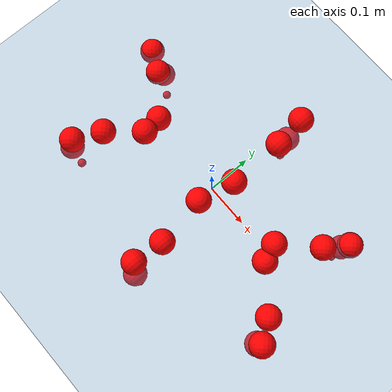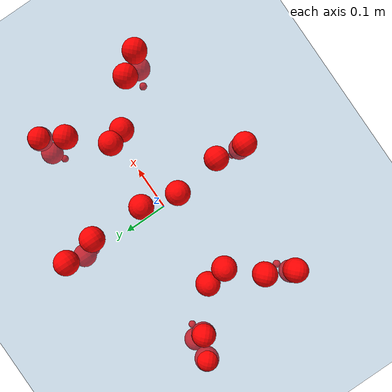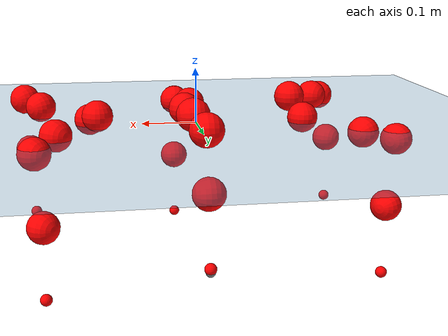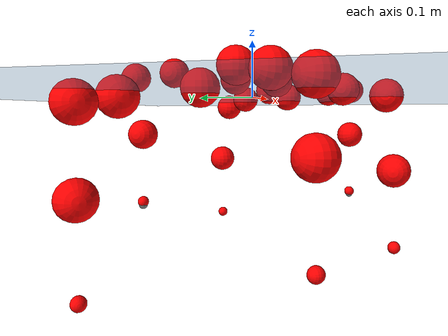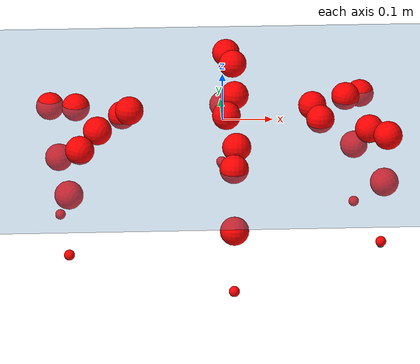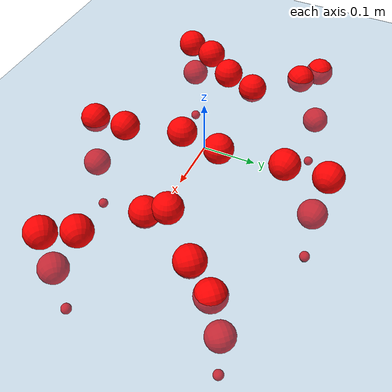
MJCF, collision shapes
<mujoco model="Golem">
  <compiler angle="radian" assetdir="assets" balanceinertia="true" inertiafromgeom="false"/>

  <option timestep="0.005" density="1.2" viscosity="2e-05"/>

  <size nkey="1"/>

  <visual>
    <quality shadowsize="8192"/>
    <map shadowclip="0.5"/>
  </visual>

  <default>
    <default class="/">
      <joint armature="0.01" damping="0.01" frictionloss="0.01"/>
      <geom contype="0" conaffinity="0" group="1" solref="-1000 -80"/>
      <site size="0.01 0.005 0.005" group="5"/>
      <general forcelimited="true" biastype="affine" gainprm="25" biasprm="0 -25 -0.5"/>
      <default class="visual">
        <geom type="mesh" group="2"/>
      </default>
      <default class="collision">
        <geom group="3"/>
      </default>
      <default class="foot">
        <geom size="0.01 0 0" condim="6" group="4" priority="1" solimp="0.015 1 0.01"/>
      </default>
      <default class="reward_collision_sphere">
        <geom group="5" rgba="1 0 0 1"/>
      </default>
    </default>
  </default>

  <asset>
    <texture type="skybox" colorspace="auto" name="//unnamed_texture_0" builtin="gradient" rgb1="0.95 0.95 0.95" rgb2="0.95 0.95 0.95" width="100" height="600"/>
    <texture type="2d" colorspace="auto" name="texplane" builtin="checker" rgb1="0.345 0.575 0.748" rgb2="0.345 0.575 0.748" markrgb="1 1 1" width="512" height="512"/>
    <material name="MatPlane" class="/" texture="texplane" texuniform="true" texrepeat="2 2" specular="0.9"/>
    <mesh name="body" class="/" file="body.stl" scale="0.001 0.001 0.001"/>
    <mesh name="coxa" class="/" file="coxa.stl" scale="0.001 0.001 0.001"/>
    <mesh name="femur" class="/" file="femur.stl" scale="0.001 0.001 0.001"/>
    <mesh name="tibia" class="/" file="tibia.stl" scale="0.001 0.001 0.001"/>
    <mesh name="tarsus" class="/" file="tarsus.stl" scale="0.001 0.001 0.001"/>
  </asset>

  <worldbody>
    <geom name="floor" class="/" size="100 100 0.125" type="plane" group="0" material="MatPlane"/>
    <light name="toplight_shadow" class="/" pos="0 0 5" dir="0.0990148 0.0990148 -0.990148" type="directional" ambient="0.04 0.04 0.04" diffuse="0.55 0.55 0.55" specular="0.12 0.12 0.12"/>
    <light name="toplight_fill" class="/" pos="0 0 5" dir="0.0990148 0.0990148 -0.990148" type="directional" castshadow="false" ambient="0.04 0.04 0.04" diffuse="0.3 0.3 0.3" specular="0.08 0.08 0.08"/>
    <body name="trunk" pos="0.00694934 -0.0072793 0.00843519" quat="0.999991 -0.00129095 0.00339818 -0.00216249">
      <inertial pos="-0.0150178 -0.00846677 0.00344492" quat="0.998141 -0.0123325 0.0201001 0.0561931" mass="1.07635" diaginertia="0.0159141 0.000700008 8.26307e-06"/>
      <joint name="//unnamed_joint_0" type="free"/>
      <geom name="//unnamed_geom_1" class="/" pos="0 0 0.0169957" quat="1 0 0 0" type="mesh" rgba="0.9 0.9 0.9 1" mesh="body"/>
      <site name="imu" class="/" pos="0.131052 -0.0340208 0.115291" size="0.00705452"/>
      <camera name="track" class="/" pos="0 -1.26332 0" quat="0.707107 0.707107 0 0" mode="trackcom"/>
      <camera name="ego_camera" class="/" pos="0.158488 0 0.0265558" quat="-0.5 -0.5 0.5 0.5"/>
      <body name="coxa_RR" pos="-0.218349 -0.0518131 0.0285823" quat="0.381902 -0.00010517 0.00108637 -0.924202">
        <inertial pos="0.00216362 0.0123884 0.00241904" quat="0.999879 -0.00632661 -0.000193832 -0.0141892" mass="0.0873232" diaginertia="0.0303768 0.0013354 1.32181e-05"/>
        <joint name="coxa_joint_RR" class="/" pos="0 0 0" axis="0.0327996 0.0926091 -0.995162" range="-2.86706 3.12922" armature="0.0036114" damping="0.0633508" frictionloss="0.00654332"/>
        <geom name="//unnamed_geom_2" class="/" type="mesh" rgba="0.2 0.2 0.2 1" mesh="coxa"/>
        <geom name="//unnamed_geom_3" class="reward_collision_sphere" size="0.0282181" pos="-0.0365742 0 0"/>
        <body name="femur_RR" pos="0.0555537 0.00315034 -0.0121106" quat="0.496745 -0.505178 0.49776 0.500273">
          <inertial pos="-0.00846315 -0.00348415 0.0127248" quat="0.999791 0.0165289 0.00888219 -0.00812142" mass="0.0926875" diaginertia="0.0252125 0.0011552 1.35306e-05"/>
          <joint name="femur_joint_RR" class="/" pos="0 0 0" axis="-0.076399 0.0364475 -0.996411" stiffness="0.0247234" range="-3.15924 2.94662" armature="0.00723676" damping="0.00880537" frictionloss="0.00314536"/>
          <geom name="//unnamed_geom_4" class="/" type="mesh" rgba="0.9 0.9 0.9 1" mesh="femur"/>
          <geom name="//unnamed_geom_5" class="reward_collision_sphere" size="0.0282181"/>
          <body name="tibia_RR" pos="0.0123255 -0.0686527 0.0195478" quat="-0.000519031 1 0.000327167 -0.000193099">
            <inertial pos="0.00506026 0.0183631 -0.00522382" quat="0.995726 -0.00341944 -0.0076882 0.0919687" mass="0.0698514" diaginertia="0.0225631 0.00110173 1.25107e-05"/>
            <joint name="tibia_joint_RR" class="/" pos="0 0 0" axis="0.0272226 -0.0639926 0.997579" range="-3.41509 3.3093" armature="0.00771751" damping="0" frictionloss="0.0106725"/>
            <geom name="//unnamed_geom_6" class="/" type="mesh" rgba="0.2 0.2 0.2 1" mesh="tibia"/>
            <geom name="//unnamed_geom_7" class="reward_collision_sphere" size="0.0282181"/>
            <body name="tarsus_RR" pos="0.094285 0.0185208 0.0120367" quat="0.99998 -0.000338357 0.00503205 0.00371649">
              <inertial pos="0.075649 0.00375697 0.0139316" quat="0.489847 0.43477 0.55191 0.51616" mass="0.0639915" diaginertia="0.032604 0.000952543 1.79766e-05"/>
              <joint name="tarsus_joint_RR" class="/" pos="0 0 0" axis="4.07837e-06 0.0179911 0.999838" stiffness="0.0416999" range="-2.86471 3.28224" armature="0.0108064" damping="0" frictionloss="0.00164486"/>
              <geom name="//unnamed_geom_8" class="/" type="mesh" rgba="0.9 0.9 0.9 1" mesh="tarsus"/>
              <geom name="foot_1" class="foot" size="0.00387256" pos="0.136544 0 0" quat="0 -0.707107 0 0.707107"/>
              <geom name="//unnamed_geom_10" class="reward_collision_sphere" size="0.0282181"/>
              <geom name="//unnamed_geom_11" class="reward_collision_sphere" size="0.0105818" pos="0.131057 0 0"/>
              <site name="foot_1" class="foot" pos="0.136544 0 0" quat="0 -0.707107 0 0.707107" size="0.00705452"/>
            </body>
          </body>
        </body>
      </body>
      <body name="coxa_RM" pos="-0.00074958 -0.0716903 0.0211096" quat="0.704807 -0.00892185 -0.00299085 -0.709337">
        <inertial pos="-0.0141811 -0.00373959 0.0163984" quat="1 2.51419e-06 4.37496e-06 2.02007e-06" mass="0.0796924" diaginertia="0.0256632 0.000824827 1.43659e-05"/>
        <joint name="coxa_joint_RM" class="/" pos="0 0 0" axis="0.0206596 -0.0333527 -0.99923" range="-3.24494 3.20058" armature="0.00112591" damping="0.0287904" frictionloss="0.00348707"/>
        <geom name="//unnamed_geom_12" class="/" type="mesh" rgba="0.2 0.2 0.2 1" mesh="coxa"/>
        <geom name="//unnamed_geom_13" class="reward_collision_sphere" size="0.0282181" pos="-0.0365742 0 0"/>
        <body name="femur_RM" pos="0.0780487 0.0165476 -0.0173892" quat="0.501045 -0.497458 0.501112 0.500376">
          <inertial pos="-0.0182773 0.0129083 -0.00338464" quat="0.998809 -0.00953369 0.0197947 0.0435744" mass="0.0865735" diaginertia="0.0397938 0.00118782 1.97344e-05"/>
          <joint name="femur_joint_RM" class="/" pos="0 0 0" axis="0.0385442 -0.0615555 -0.997359" range="-3.08927 3.48925" armature="0.00371203" damping="0" frictionloss="0.0113746"/>
          <geom name="//unnamed_geom_14" class="/" type="mesh" rgba="0.9 0.9 0.9 1" mesh="femur"/>
          <geom name="//unnamed_geom_15" class="reward_collision_sphere" size="0.0282181"/>
          <body name="tibia_RM" pos="0.0133995 -0.0729339 -0.00697818" quat="0.00159289 0.999978 -0.0014164 0.00622468">
            <inertial pos="0.0131922 -0.0196018 -0.00539815" quat="0.997917 -0.0460228 -0.0144498 -0.0428325" mass="0.0735901" diaginertia="0.0311834 0.00112085 1.62116e-05"/>
            <joint name="tibia_joint_RM" class="/" pos="0 0 0" axis="0.0348018 -0.0138921 0.999298" stiffness="0.04978" range="-3.22986 2.87183" armature="0.010256" damping="0" frictionloss="0.00635872"/>
            <geom name="//unnamed_geom_16" class="/" type="mesh" rgba="0.2 0.2 0.2 1" mesh="tibia"/>
            <geom name="//unnamed_geom_17" class="reward_collision_sphere" size="0.0282181"/>
            <body name="tarsus_RM" pos="0.126728 0.0112476 -0.000578594" quat="0.999998 0.00216122 -9.83692e-05 0.000114812">
              <inertial pos="0.0566897 0.00610458 -0.00904604" quat="0.502586 0.514948 0.483621 0.498345" mass="0.052384" diaginertia="0.0252451 0.000925156 9.72486e-06"/>
              <joint name="tarsus_joint_RM" class="/" pos="0 0 0" axis="0.0326854 0.0282015 0.999068" stiffness="0.0337456" range="-2.83845 3.45578" armature="0.0074497" damping="0" frictionloss="0.0123669"/>
              <geom name="//unnamed_geom_18" class="/" type="mesh" rgba="0.9 0.9 0.9 1" mesh="tarsus"/>
              <geom name="foot_2" class="foot" size="0.00349235" pos="0.136544 0 0" quat="0 -0.707107 0 0.707107"/>
              <geom name="//unnamed_geom_20" class="reward_collision_sphere" size="0.0282181"/>
              <geom name="//unnamed_geom_21" class="reward_collision_sphere" size="0.0105818" pos="0.131057 0 0"/>
              <site name="foot_2" class="foot" pos="0.136544 0 0" quat="0 -0.707107 0 0.707107" size="0.00705452"/>
            </body>
          </body>
        </body>
      </body>
      <body name="coxa_RF" pos="0.213668 -0.0370107 0.000468283" quat="0.92552 -0.00185687 0.0018762 -0.378689">
        <inertial pos="0.00810608 0.0177521 -0.0149273" quat="0.996181 0.0193667 0.0504105 0.0686052" mass="0.0988805" diaginertia="0.0358353 0.00118374 1.57949e-05"/>
        <joint name="coxa_joint_RF" class="/" pos="0 0 0" axis="-0.0283085 0.074969 -0.996784" range="-3.50139 2.89858" armature="0.0124092" damping="0.0647881" frictionloss="0.0084873"/>
        <geom name="//unnamed_geom_22" class="/" type="mesh" rgba="0.2 0.2 0.2 1" mesh="coxa"/>
        <geom name="//unnamed_geom_23" class="reward_collision_sphere" size="0.0282181" pos="-0.0365742 0 0"/>
        <body name="femur_RF" pos="0.0801806 0.0115662 0.0119679" quat="0.500981 -0.499628 0.500004 0.499386">
          <inertial pos="0.0145911 -0.0176214 -0.00476918" quat="0.99898 -0.0186892 0.0152202 0.0381911" mass="0.0655252" diaginertia="0.023602 0.000738161 1.13141e-05"/>
          <joint name="femur_joint_RF" class="/" pos="0 0 0" axis="0.0304749 0.00853 -0.999499" range="-3.03097 3.37108" armature="0.00576443" damping="0.036118" frictionloss="0.011149"/>
          <geom name="//unnamed_geom_24" class="/" type="mesh" rgba="0.9 0.9 0.9 1" mesh="femur"/>
          <geom name="//unnamed_geom_25" class="reward_collision_sphere" size="0.0282181"/>
          <body name="tibia_RF" pos="-0.00710853 -0.0563409 -0.0109869" quat="0.000187183 0.999998 0.00174492 -0.000211288">
            <inertial pos="-0.00280904 -0.000446018 0.0190585" quat="0.996603 -0.0536747 -0.0566825 0.0262325" mass="0.0727122" diaginertia="0.033194 0.00136322 1.18885e-05"/>
            <joint name="tibia_joint_RF" class="/" pos="0 0 0" axis="0.0349247 -0.0387789 0.998637" stiffness="0.0327367" range="-3.05465 2.89327" armature="0.00530057" damping="0" frictionloss="0.00264326"/>
            <geom name="//unnamed_geom_26" class="/" type="mesh" rgba="0.2 0.2 0.2 1" mesh="tibia"/>
            <geom name="//unnamed_geom_27" class="reward_collision_sphere" size="0.0282181"/>
            <body name="tarsus_RF" pos="0.10146 -0.00330208 0.0016564" quat="0.999972 0.000411192 -0.00538585 -0.0051349">
              <inertial pos="0.0845722 -0.00764571 -0.00920653" quat="0.495458 0.484888 0.507787 0.511427" mass="0.0609323" diaginertia="0.025148 0.00102255 1.36537e-05"/>
              <joint name="tarsus_joint_RF" class="/" pos="0 0 0" axis="0.0258085 0.0589085 0.99793" stiffness="0.0499911" range="-3.44589 3.14478" armature="0.00517826" damping="0.0436189" frictionloss="0.00447059"/>
              <geom name="//unnamed_geom_28" class="/" type="mesh" rgba="0.9 0.9 0.9 1" mesh="tarsus"/>
              <geom name="foot_3" class="foot" size="0.00765594" pos="0.136544 0 0" quat="0 -0.707107 0 0.707107"/>
              <geom name="//unnamed_geom_30" class="reward_collision_sphere" size="0.0282181"/>
              <geom name="//unnamed_geom_31" class="reward_collision_sphere" size="0.0105818" pos="0.131057 0 0"/>
              <site name="foot_3" class="foot" pos="0.136544 0 0" quat="0 -0.707107 0 0.707107" size="0.00705452"/>
            </body>
          </body>
        </body>
      </body>
      <body name="coxa_LR" pos="-0.232258 0.0483898 -0.00299229" quat="0.383106 -0.00449222 -0.000243505 0.923694">
        <inertial pos="0.0145248 0.0152523 0.00042826" quat="0.997211 0.0674257 0.031829 0.00332814" mass="0.0755763" diaginertia="0.0241008 0.00140421 1.93594e-05"/>
        <joint name="coxa_joint_LR" class="/" pos="0 0 0" axis="0.0145512 -0.00878157 -0.999856" range="-2.88759 2.91365" armature="0.00309879" damping="0.00371771" frictionloss="0.00530557"/>
        <geom name="//unnamed_geom_32" class="/" type="mesh" rgba="0.2 0.2 0.2 1" mesh="coxa"/>
        <geom name="//unnamed_geom_33" class="reward_collision_sphere" size="0.0282181" pos="-0.0365742 0 0"/>
        <body name="femur_LR" pos="0.0816191 0.014075 -0.0144427" quat="0.503222 -0.497099 0.500324 0.499336">
          <inertial pos="-0.00622817 0.0197967 -0.00736226" quat="0.999985 -0.00343452 -0.00299256 0.00315265" mass="0.0750502" diaginertia="0.0337745 0.000846159 1.66661e-05"/>
          <joint name="femur_joint_LR" class="/" pos="0 0 0" axis="-0.00467398 0.00027895 0.999989" stiffness="0.0378603" range="-3.47989 3.18084" armature="0.00895341" damping="0.102478" frictionloss="0.006964"/>
          <geom name="//unnamed_geom_34" class="/" type="mesh" rgba="0.9 0.9 0.9 1" mesh="femur"/>
          <geom name="//unnamed_geom_35" class="reward_collision_sphere" size="0.0282181"/>
          <body name="tibia_LR" pos="0.00815143 -0.0553624 0.0192731" quat="0.00073361 0.999981 -0.00490145 -0.0037046">
            <inertial pos="-0.0126915 0.0152039 0.0124934" quat="0.996597 0.0805785 0.015784 0.00726653" mass="0.058063" diaginertia="0.0289597 0.00105072 1.17652e-05"/>
            <joint name="tibia_joint_LR" class="/" pos="0 0 0" axis="0.0486053 -0.00376233 -0.998811" range="-3.38655 2.79394" armature="0.00395681" damping="0.0689151" frictionloss="0.00665661"/>
            <geom name="//unnamed_geom_36" class="/" type="mesh" rgba="0.2 0.2 0.2 1" mesh="tibia"/>
            <geom name="//unnamed_geom_37" class="reward_collision_sphere" size="0.0282181"/>
            <body name="tarsus_LR" pos="0.120719 -0.00303574 0.0191875" quat="0.999974 0.00657735 0.000181154 -0.00306558">
              <inertial pos="0.0802601 0.0183365 0.0170286" quat="0.543686 0.488862 0.473105 0.491519" mass="0.0638431" diaginertia="0.0224262 0.00111261 1.53848e-05"/>
              <joint name="tarsus_joint_LR" class="/" pos="0 0 0" axis="-0.00266897 -0.0853226 -0.99635" stiffness="0.0830237" range="-2.92139 3.39698" armature="0.0124942" damping="0.0787919" frictionloss="0.0116075"/>
              <geom name="//unnamed_geom_38" class="/" type="mesh" rgba="0.9 0.9 0.9 1" mesh="tarsus"/>
              <geom name="foot_4" class="foot" size="0.00189216" pos="0.136544 0 0" quat="0.707107 0 -0.707107 0"/>
              <geom name="//unnamed_geom_40" class="reward_collision_sphere" size="0.0282181"/>
              <geom name="//unnamed_geom_41" class="reward_collision_sphere" size="0.0105818" pos="0.131057 0 0"/>
              <site name="foot_4" class="foot" pos="0.136544 0 0" quat="0.707107 0 -0.707107 0" size="0.00705452"/>
            </body>
          </body>
        </body>
      </body>
      <body name="coxa_LM" pos="0.0189594 0.0843788 0.0271335" quat="0.707501 0.000429341 0.00107839 0.706711">
        <inertial pos="0.00992994 0.0144281 -0.0101141" quat="0.996552 0.0502415 0.00762364 -0.0655864" mass="0.0641259" diaginertia="0.0181737 0.000783376 9.80315e-06"/>
        <joint name="coxa_joint_LM" class="/" pos="0 0 0" axis="-0.0938181 -0.0215994 -0.995355" stiffness="0.0503079" range="-3.22133 2.97526" armature="0.00413914" damping="0" frictionloss="0.00243796"/>
        <geom name="//unnamed_geom_42" class="/" type="mesh" rgba="0.2 0.2 0.2 1" mesh="coxa"/>
        <geom name="//unnamed_geom_43" class="reward_collision_sphere" size="0.0282181" pos="-0.0365742 0 0"/>
        <body name="femur_LM" pos="0.0883974 -0.000954117 0.0145515" quat="0.500231 -0.499921 0.499812 0.500035">
          <inertial pos="-0.0143501 0.00680247 0.00858474" quat="0.997225 -0.0724237 -0.00147925 -0.0171899" mass="0.0492454" diaginertia="0.0265861 0.000629041 1.19699e-05"/>
          <joint name="femur_joint_LM" class="/" pos="0 0 0" axis="-0.0159828 0.000579608 0.999872" range="-3.3183 3.02878" armature="0.00866997" damping="0" frictionloss="0.0120152"/>
          <geom name="//unnamed_geom_44" class="/" type="mesh" rgba="0.9 0.9 0.9 1" mesh="femur"/>
          <geom name="//unnamed_geom_45" class="reward_collision_sphere" size="0.0282181"/>
          <body name="tibia_LM" pos="0.00806274 -0.0764495 0.0107061" quat="-0.00594818 0.999968 0.00152628 0.00509042">
            <inertial pos="-0.0133179 -0.00417771 0.0164102" quat="0.996365 0.0695585 0.00287263 0.0490885" mass="0.0808993" diaginertia="0.030901 0.000833997 1.59045e-05"/>
            <joint name="tibia_joint_LM" class="/" pos="0 0 0" axis="0.0608064 -0.0106886 -0.998092" stiffness="0.0876053" range="-3.07847 3.16226" armature="0.00818033" damping="0" frictionloss="0.0125495"/>
            <geom name="//unnamed_geom_46" class="/" type="mesh" rgba="0.2 0.2 0.2 1" mesh="tibia"/>
            <geom name="//unnamed_geom_47" class="reward_collision_sphere" size="0.0282181"/>
            <body name="tarsus_LM" pos="0.109795 -0.0162462 -0.00434478" quat="0.999966 -0.0078757 0.00179713 0.00181562">
              <inertial pos="0.0760006 0.00313344 -0.0122348" quat="0.510351 0.425535 0.536071 0.520662" mass="0.0597037" diaginertia="0.0219166 0.00121881 1.42691e-05"/>
              <joint name="tarsus_joint_LM" class="/" pos="0 0 0" axis="-0.0318641 -0.0894578 -0.995481" range="-3.25572 3.24994" armature="0.00933879" damping="0" frictionloss="0.00106214"/>
              <geom name="//unnamed_geom_48" class="/" type="mesh" rgba="0.9 0.9 0.9 1" mesh="tarsus"/>
              <geom name="foot_5" class="foot" size="0.00859993" pos="0.136544 0 0" quat="0.707107 0 -0.707107 0"/>
              <geom name="//unnamed_geom_50" class="reward_collision_sphere" size="0.0282181"/>
              <geom name="//unnamed_geom_51" class="reward_collision_sphere" size="0.0105818" pos="0.131057 0 0"/>
              <site name="foot_5" class="foot" pos="0.136544 0 0" quat="0.707107 0 -0.707107 0" size="0.00705452"/>
            </body>
          </body>
        </body>
      </body>
      <body name="coxa_LF" pos="0.199713 0.0511585 0.0141373" quat="0.924026 -0.00275137 -0.00276759 0.382309">
        <inertial pos="0.00104089 0.000937389 -0.0164426" quat="0.99728 0.0604142 -0.0382533 0.0178631" mass="0.0866183" diaginertia="0.0345972 0.000832831 1.63525e-05"/>
        <joint name="coxa_joint_LF" class="/" pos="0 0 0" axis="-0.0600146 -0.0504833 -0.99692" range="-2.99939 3.18662" armature="0.0132246" damping="0.0116338" frictionloss="0.000127403"/>
        <geom name="//unnamed_geom_52" class="/" type="mesh" rgba="0.2 0.2 0.2 1" mesh="coxa"/>
        <geom name="//unnamed_geom_53" class="reward_collision_sphere" size="0.0282181" pos="-0.0365742 0 0"/>
        <body name="femur_LF" pos="0.0687933 0.00345201 -0.0150924" quat="0.500322 -0.502588 0.499155 0.497922">
          <inertial pos="0.0192777 0.00285582 -0.0197436" quat="0.999641 0.0250216 0.00105385 -0.00957228" mass="0.0756246" diaginertia="0.0198699 0.00087336 1.20051e-05"/>
          <joint name="femur_joint_LF" class="/" pos="0 0 0" axis="0.0062106 0.00729692 0.999954" range="-3.23016 3.23912" armature="0.00257544" damping="0" frictionloss="0.00413497"/>
          <geom name="//unnamed_geom_54" class="/" type="mesh" rgba="0.9 0.9 0.9 1" mesh="femur"/>
          <geom name="//unnamed_geom_55" class="reward_collision_sphere" size="0.0282181"/>
          <body name="tibia_LF" pos="0.0173508 -0.0608445 0.0129513" quat="0.00353586 0.999979 -0.00444995 -0.00313665">
            <inertial pos="0.010906 0.0191306 0.0035948" quat="1 -0.000443008 0.000338947 0.000398736" mass="0.0762463" diaginertia="0.0414634 0.00129463 1.45018e-05"/>
            <joint name="tibia_joint_LF" class="/" pos="0 0 0" axis="0.0111652 0.0178644 -0.999778" stiffness="0.046416" range="-3.06648 3.01226" armature="0.0013749" damping="0.0691708" frictionloss="0.00565364"/>
            <geom name="//unnamed_geom_56" class="/" type="mesh" rgba="0.2 0.2 0.2 1" mesh="tibia"/>
            <geom name="//unnamed_geom_57" class="reward_collision_sphere" size="0.0282181"/>
            <body name="tarsus_LF" pos="0.122839 0.0033328 -0.0183913" quat="0.999994 0.00281008 0.000826086 0.00190861">
              <inertial pos="0.0663318 -0.0124997 0.00690107" quat="0.498337 0.526366 0.444147 0.526624" mass="0.103492" diaginertia="0.0290918 0.00148938 1.41364e-05"/>
              <joint name="tarsus_joint_LF" class="/" pos="0 0 0" axis="0.0107504 -0.0524212 -0.998567" stiffness="0.00523361" range="-3.29744 3.1766" armature="0.000887403" damping="0.07989" frictionloss="0.0136851"/>
              <geom name="//unnamed_geom_58" class="/" type="mesh" rgba="0.9 0.9 0.9 1" mesh="tarsus"/>
              <geom name="foot_6" class="foot" size="0.00437104" pos="0.136544 0 0" quat="0.707107 0 -0.707107 0"/>
              <geom name="//unnamed_geom_60" class="reward_collision_sphere" size="0.0282181"/>
              <geom name="//unnamed_geom_61" class="reward_collision_sphere" size="0.0105818" pos="0.131057 0 0"/>
              <site name="foot_6" class="foot" pos="0.136544 0 0" quat="0.707107 0 -0.707107 0" size="0.00705452"/>
            </body>
          </body>
        </body>
      </body>
    </body>
  </worldbody>

  <contact>
    <pair class="/" geom1="floor" geom2="foot_1" name="//unnamed_contact_0"/>
    <pair class="/" geom1="floor" geom2="foot_2" name="//unnamed_contact_1"/>
    <pair class="/" geom1="floor" geom2="foot_3" name="//unnamed_contact_2"/>
    <pair class="/" geom1="floor" geom2="foot_4" name="//unnamed_contact_3"/>
    <pair class="/" geom1="floor" geom2="foot_5" name="//unnamed_contact_4"/>
    <pair class="/" geom1="floor" geom2="foot_6" name="//unnamed_contact_5"/>
  </contact>

  <actuator>
    <general name="coxa_joint_RR" class="/" joint="coxa_joint_RR" forcerange="-7.07136 7.07136" gainprm="10.3604" biasprm="0 -10.3604 -0.436381"/>
    <general name="femur_joint_RR" class="/" joint="femur_joint_RR" forcerange="-6.25987 6.25987" gainprm="10.3604" biasprm="0 -10.3604 -0.436381"/>
    <general name="tibia_joint_RR" class="/" joint="tibia_joint_RR" forcerange="-6.89371 6.89371" gainprm="10.3604" biasprm="0 -10.3604 -0.436381"/>
    <general name="tarsus_joint_RR" class="/" joint="tarsus_joint_RR" forcerange="-1.92712 1.92712" gainprm="10.3604" biasprm="0 -10.3604 -0.436381"/>
    <general name="coxa_joint_RM" class="/" joint="coxa_joint_RM" forcerange="-4.01228 4.01228" gainprm="10.3604" biasprm="0 -10.3604 -0.436381"/>
    <general name="femur_joint_RM" class="/" joint="femur_joint_RM" forcerange="-5.303 5.303" gainprm="10.3604" biasprm="0 -10.3604 -0.436381"/>
    <general name="tibia_joint_RM" class="/" joint="tibia_joint_RM" forcerange="-4.58374 4.58374" gainprm="10.3604" biasprm="0 -10.3604 -0.436381"/>
    <general name="tarsus_joint_RM" class="/" joint="tarsus_joint_RM" forcerange="-1.60121 1.60121" gainprm="10.3604" biasprm="0 -10.3604 -0.436381"/>
    <general name="coxa_joint_RF" class="/" joint="coxa_joint_RF" forcerange="-2.78625 2.78625" gainprm="10.3604" biasprm="0 -10.3604 -0.436381"/>
    <general name="femur_joint_RF" class="/" joint="femur_joint_RF" forcerange="-8.58748 8.58748" gainprm="10.3604" biasprm="0 -10.3604 -0.436381"/>
    <general name="tibia_joint_RF" class="/" joint="tibia_joint_RF" forcerange="-2.54325 2.54325" gainprm="10.3604" biasprm="0 -10.3604 -0.436381"/>
    <general name="tarsus_joint_RF" class="/" joint="tarsus_joint_RF" forcerange="-7.86929 7.86929" gainprm="10.3604" biasprm="0 -10.3604 -0.436381"/>
    <general name="coxa_joint_LR" class="/" joint="coxa_joint_LR" forcerange="-7.63821 7.63821" gainprm="10.3604" biasprm="0 -10.3604 -0.436381"/>
    <general name="femur_joint_LR" class="/" joint="femur_joint_LR" forcerange="-4.31007 4.31007" gainprm="10.3604" biasprm="0 -10.3604 -0.436381"/>
    <general name="tibia_joint_LR" class="/" joint="tibia_joint_LR" forcerange="-4.89321 4.89321" gainprm="10.3604" biasprm="0 -10.3604 -0.436381"/>
    <general name="tarsus_joint_LR" class="/" joint="tarsus_joint_LR" forcerange="-7.65261 7.65261" gainprm="10.3604" biasprm="0 -10.3604 -0.436381"/>
    <general name="coxa_joint_LM" class="/" joint="coxa_joint_LM" forcerange="-6.54554 6.54554" gainprm="10.3604" biasprm="0 -10.3604 -0.436381"/>
    <general name="femur_joint_LM" class="/" joint="femur_joint_LM" forcerange="-7.75259 7.75259" gainprm="10.3604" biasprm="0 -10.3604 -0.436381"/>
    <general name="tibia_joint_LM" class="/" joint="tibia_joint_LM" forcerange="-7.13965 7.13965" gainprm="10.3604" biasprm="0 -10.3604 -0.436381"/>
    <general name="tarsus_joint_LM" class="/" joint="tarsus_joint_LM" forcerange="-6.62731 6.62731" gainprm="10.3604" biasprm="0 -10.3604 -0.436381"/>
    <general name="coxa_joint_LF" class="/" joint="coxa_joint_LF" forcerange="-8.3399 8.3399" gainprm="10.3604" biasprm="0 -10.3604 -0.436381"/>
    <general name="femur_joint_LF" class="/" joint="femur_joint_LF" forcerange="-7.64338 7.64338" gainprm="10.3604" biasprm="0 -10.3604 -0.436381"/>
    <general name="tibia_joint_LF" class="/" joint="tibia_joint_LF" forcerange="-2.67065 2.67065" gainprm="10.3604" biasprm="0 -10.3604 -0.436381"/>
    <general name="tarsus_joint_LF" class="/" joint="tarsus_joint_LF" forcerange="-7.06725 7.06725" gainprm="10.3604" biasprm="0 -10.3604 -0.436381"/>
  </actuator>

  <sensor>
    <gyro site="imu" name="imu_angular_velocity"/>
    <velocimeter site="imu" name="imu_linear_velocity"/>
    <framelinvel objtype="site" objname="foot_1" name="foot_1_global_linear_velocity"/>
    <framelinvel objtype="site" objname="foot_2" name="foot_2_global_linear_velocity"/>
    <framelinvel objtype="site" objname="foot_3" name="foot_3_global_linear_velocity"/>
    <framelinvel objtype="site" objname="foot_4" name="foot_4_global_linear_velocity"/>
    <framelinvel objtype="site" objname="foot_5" name="foot_5_global_linear_velocity"/>
    <framelinvel objtype="site" objname="foot_6" name="foot_6_global_linear_velocity"/>
  </sensor>

  <keyframe>
    <key name="home" qpos="0 0 0.1457 1 0 0 0 0 0 0 0 0 0 0 0 0 0 0 0 0 0 0 0 0 0 0 0 0 0 0 0"/>
  </keyframe>
</mujoco>
